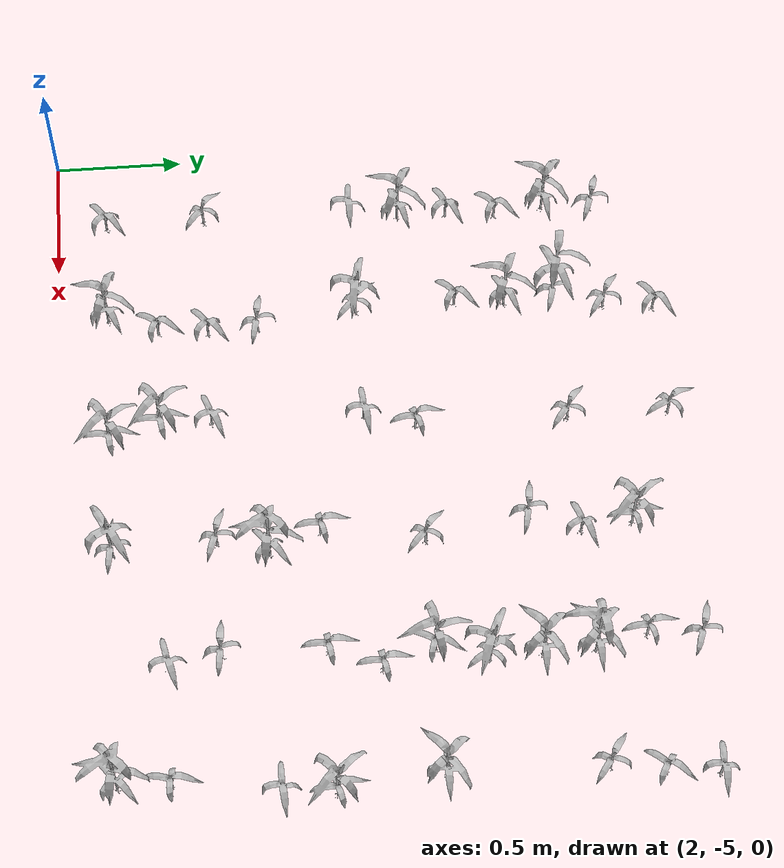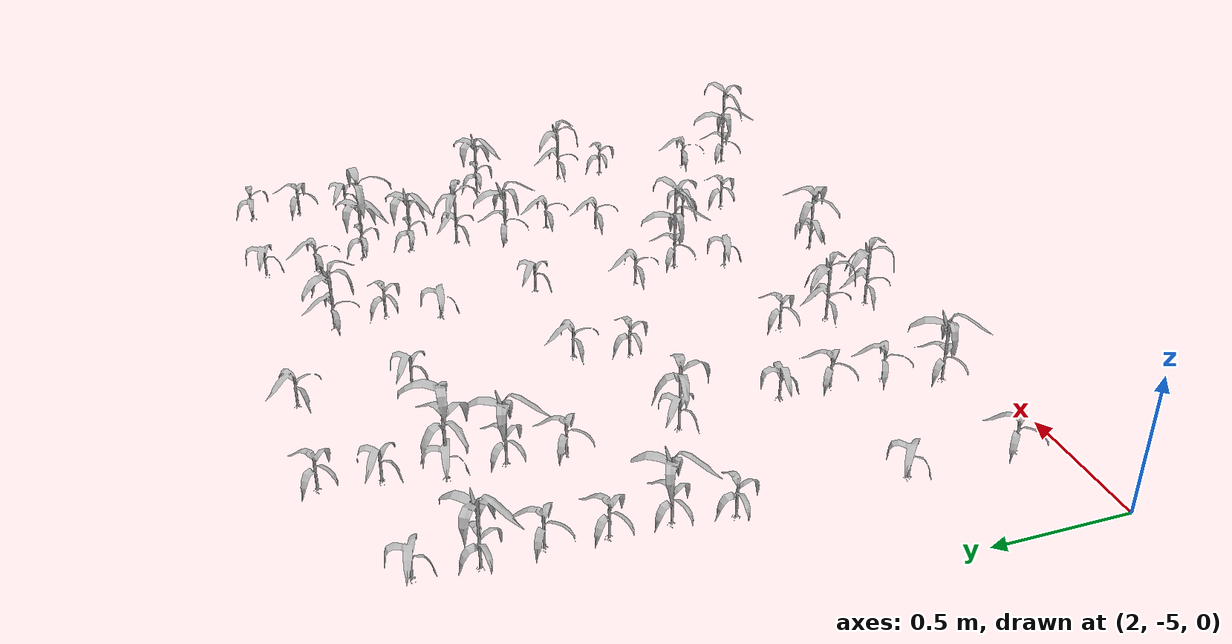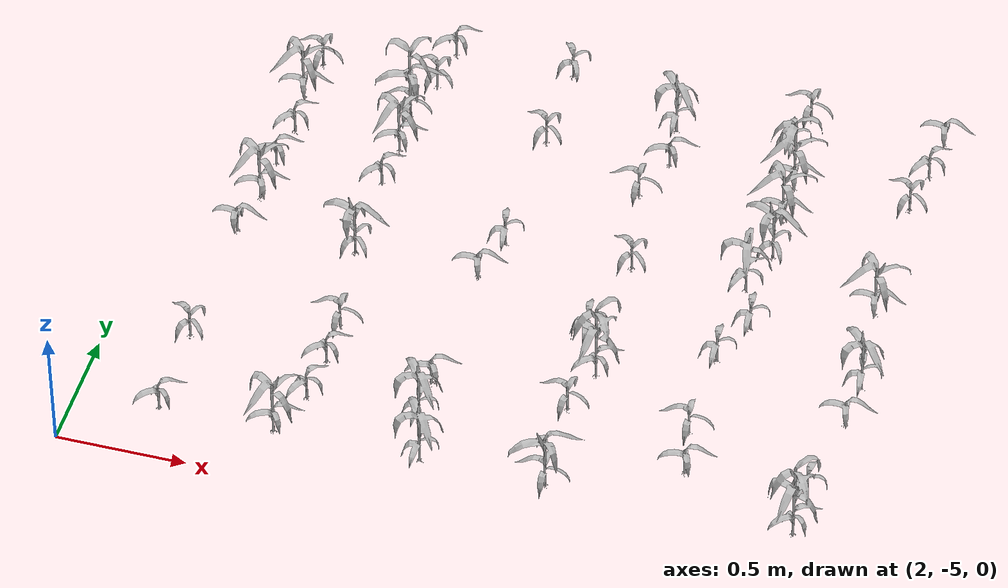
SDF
<sdf version="1.7">
 <world name="default">
  <model name="maize_2.3348726021539314_-4.8">
   <static>1</static>
   <link name="link">
    <inertial>
     <mass>0.2</mass>
     <inertia>
      <ixx>0.166667</ixx>
      <ixy>0</ixy>
      <ixz>0</ixz>
      <iyy>0.166667</iyy>
      <iyz>0</iyz>
      <izz>0.166667</izz>
     </inertia>
    </inertial>
    <collision name="collision">
     <geometry><mesh><uri>model://corn_3/meshes/corn.dae</uri><scale>0.25 0.25 0.25</scale></mesh></geometry>
     <surface>
      <friction><ode><mu>0</mu><mu2>0</mu2></ode></friction>
      <contact><ode><kp>0</kp><kd>0</kd><max_vel>0</max_vel><min_depth>0.002</min_depth></ode></contact>
     </surface>
    </collision>
    <visual name="visual">
     <geometry><mesh><uri>model://corn_3/meshes/corn.dae</uri><scale>0.25 0.25 0.25</scale></mesh></geometry>
    </visual>
    <velocity_decay><linear>0</linear><angular>0</angular></velocity_decay>
   </link>
   <pose>2.33487 -4.8 0.05 0 -0 0.77336</pose>
  </model>
  <model name="maize_2.32935553748009_-4.41">
   <static>1</static>
   <link name="link">
    <inertial>
     <mass>0.2</mass>
     <inertia>
      <ixx>0.166667</ixx>
      <ixy>0</ixy>
      <ixz>0</ixz>
      <iyy>0.166667</iyy>
      <iyz>0</iyz>
      <izz>0.166667</izz>
     </inertia>
    </inertial>
    <collision name="collision">
     <geometry><mesh><uri>model://corn_3/meshes/corn.dae</uri><scale>0.25 0.25 0.25</scale></mesh></geometry>
     <surface>
      <friction><ode><mu>0</mu><mu2>0</mu2></ode></friction>
      <contact><ode><kp>0</kp><kd>0</kd><max_vel>0</max_vel><min_depth>0.002</min_depth></ode></contact>
     </surface>
    </collision>
    <visual name="visual">
     <geometry><mesh><uri>model://corn_3/meshes/corn.dae</uri><scale>0.25 0.25 0.25</scale></mesh></geometry>
    </visual>
    <velocity_decay><linear>0</linear><angular>0</angular></velocity_decay>
   </link>
   <pose>2.32936 -4.41 0.05 0 -0 2.48781</pose>
  </model>
  <model name="maize_2.3270855033103324_-3.8249999999999997">
   <static>1</static>
   <link name="link">
    <inertial>
     <mass>0.2</mass>
     <inertia>
      <ixx>0.166667</ixx>
      <ixy>0</ixy>
      <ixz>0</ixz>
      <iyy>0.166667</iyy>
      <iyz>0</iyz>
      <izz>0.166667</izz>
     </inertia>
    </inertial>
    <collision name="collision">
     <geometry><mesh><uri>model://corn_3/meshes/corn.dae</uri><scale>0.25 0.25 0.25</scale></mesh></geometry>
     <surface>
      <friction><ode><mu>0</mu><mu2>0</mu2></ode></friction>
      <contact><ode><kp>0</kp><kd>0</kd><max_vel>0</max_vel><min_depth>0.002</min_depth></ode></contact>
     </surface>
    </collision>
    <visual name="visual">
     <geometry><mesh><uri>model://corn_3/meshes/corn.dae</uri><scale>0.25 0.25 0.25</scale></mesh></geometry>
    </visual>
    <velocity_decay><linear>0</linear><angular>0</angular></velocity_decay>
   </link>
   <pose>2.32709 -3.825 0.05 0 -0 0.055733</pose>
  </model>
  <model name="maize_2.358168222878978_-3.63">
   <static>1</static>
   <link name="link">
    <inertial>
     <mass>0.2</mass>
     <inertia>
      <ixx>0.166667</ixx>
      <ixy>0</ixy>
      <ixz>0</ixz>
      <iyy>0.166667</iyy>
      <iyz>0</iyz>
      <izz>0.166667</izz>
     </inertia>
    </inertial>
    <collision name="collision">
     <geometry><mesh><uri>model://corn_4/meshes/corn.dae</uri><scale>0.25 0.25 0.25</scale></mesh></geometry>
     <surface>
      <friction><ode><mu>0</mu><mu2>0</mu2></ode></friction>
      <contact><ode><kp>0</kp><kd>0</kd><max_vel>0</max_vel><min_depth>0.002</min_depth></ode></contact>
     </surface>
    </collision>
    <visual name="visual">
     <geometry><mesh><uri>model://corn_4/meshes/corn.dae</uri><scale>0.25 0.25 0.25</scale></mesh></geometry>
    </visual>
    <velocity_decay><linear>0</linear><angular>0</angular></velocity_decay>
   </link>
   <pose>2.35817 -3.63 0.05 0 -0 0.399852</pose>
  </model>
  <model name="maize_2.361056824080237_-3.4349999999999996">
   <static>1</static>
   <link name="link">
    <inertial>
     <mass>0.2</mass>
     <inertia>
      <ixx>0.166667</ixx>
      <ixy>0</ixy>
      <ixz>0</ixz>
      <iyy>0.166667</iyy>
      <iyz>0</iyz>
      <izz>0.166667</izz>
     </inertia>
    </inertial>
    <collision name="collision">
     <geometry><mesh><uri>model://corn_3/meshes/corn.dae</uri><scale>0.25 0.25 0.25</scale></mesh></geometry>
     <surface>
      <friction><ode><mu>0</mu><mu2>0</mu2></ode></friction>
      <contact><ode><kp>0</kp><kd>0</kd><max_vel>0</max_vel><min_depth>0.002</min_depth></ode></contact>
     </surface>
    </collision>
    <visual name="visual">
     <geometry><mesh><uri>model://corn_3/meshes/corn.dae</uri><scale>0.25 0.25 0.25</scale></mesh></geometry>
    </visual>
    <velocity_decay><linear>0</linear><angular>0</angular></velocity_decay>
   </link>
   <pose>2.36106 -3.435 0.05 0 -0 0.600972</pose>
  </model>
  <model name="maize_2.376322774345536_-3.2399999999999998">
   <static>1</static>
   <link name="link">
    <inertial>
     <mass>0.2</mass>
     <inertia>
      <ixx>0.166667</ixx>
      <ixy>0</ixy>
      <ixz>0</ixz>
      <iyy>0.166667</iyy>
      <iyz>0</iyz>
      <izz>0.166667</izz>
     </inertia>
    </inertial>
    <collision name="collision">
     <geometry><mesh><uri>model://corn_3/meshes/corn.dae</uri><scale>0.25 0.25 0.25</scale></mesh></geometry>
     <surface>
      <friction><ode><mu>0</mu><mu2>0</mu2></ode></friction>
      <contact><ode><kp>0</kp><kd>0</kd><max_vel>0</max_vel><min_depth>0.002</min_depth></ode></contact>
     </surface>
    </collision>
    <visual name="visual">
     <geometry><mesh><uri>model://corn_3/meshes/corn.dae</uri><scale>0.25 0.25 0.25</scale></mesh></geometry>
    </visual>
    <velocity_decay><linear>0</linear><angular>0</angular></velocity_decay>
   </link>
   <pose>2.37632 -3.24 0.05 0 -0 0.966387</pose>
  </model>
  <model name="maize_2.352077828334703_-3.045">
   <static>1</static>
   <link name="link">
    <inertial>
     <mass>0.2</mass>
     <inertia>
      <ixx>0.166667</ixx>
      <ixy>0</ixy>
      <ixz>0</ixz>
      <iyy>0.166667</iyy>
      <iyz>0</iyz>
      <izz>0.166667</izz>
     </inertia>
    </inertial>
    <collision name="collision">
     <geometry><mesh><uri>model://corn_4/meshes/corn.dae</uri><scale>0.25 0.25 0.25</scale></mesh></geometry>
     <surface>
      <friction><ode><mu>0</mu><mu2>0</mu2></ode></friction>
      <contact><ode><kp>0</kp><kd>0</kd><max_vel>0</max_vel><min_depth>0.002</min_depth></ode></contact>
     </surface>
    </collision>
    <visual name="visual">
     <geometry><mesh><uri>model://corn_4/meshes/corn.dae</uri><scale>0.25 0.25 0.25</scale></mesh></geometry>
    </visual>
    <velocity_decay><linear>0</linear><angular>0</angular></velocity_decay>
   </link>
   <pose>2.35208 -3.045 0.05 0 -0 0.21122</pose>
  </model>
  <model name="maize_2.371475689242387_-2.8499999999999996">
   <static>1</static>
   <link name="link">
    <inertial>
     <mass>0.2</mass>
     <inertia>
      <ixx>0.166667</ixx>
      <ixy>0</ixy>
      <ixz>0</ixz>
      <iyy>0.166667</iyy>
      <iyz>0</iyz>
      <izz>0.166667</izz>
     </inertia>
    </inertial>
    <collision name="collision">
     <geometry><mesh><uri>model://corn_3/meshes/corn.dae</uri><scale>0.25 0.25 0.25</scale></mesh></geometry>
     <surface>
      <friction><ode><mu>0</mu><mu2>0</mu2></ode></friction>
      <contact><ode><kp>0</kp><kd>0</kd><max_vel>0</max_vel><min_depth>0.002</min_depth></ode></contact>
     </surface>
    </collision>
    <visual name="visual">
     <geometry><mesh><uri>model://corn_3/meshes/corn.dae</uri><scale>0.25 0.25 0.25</scale></mesh></geometry>
    </visual>
    <velocity_decay><linear>0</linear><angular>0</angular></velocity_decay>
   </link>
   <pose>2.37148 -2.85 0.05 0 -0 2.8972</pose>
  </model>
  <model name="maize_2.773347793915831_-4.8">
   <static>1</static>
   <link name="link">
    <inertial>
     <mass>0.2</mass>
     <inertia>
      <ixx>0.166667</ixx>
      <ixy>0</ixy>
      <ixz>0</ixz>
      <iyy>0.166667</iyy>
      <iyz>0</iyz>
      <izz>0.166667</izz>
     </inertia>
    </inertial>
    <collision name="collision">
     <geometry><mesh><uri>model://corn_4/meshes/corn.dae</uri><scale>0.25 0.25 0.25</scale></mesh></geometry>
     <surface>
      <friction><ode><mu>0</mu><mu2>0</mu2></ode></friction>
      <contact><ode><kp>0</kp><kd>0</kd><max_vel>0</max_vel><min_depth>0.002</min_depth></ode></contact>
     </surface>
    </collision>
    <visual name="visual">
     <geometry><mesh><uri>model://corn_4/meshes/corn.dae</uri><scale>0.25 0.25 0.25</scale></mesh></geometry>
    </visual>
    <velocity_decay><linear>0</linear><angular>0</angular></velocity_decay>
   </link>
   <pose>2.77335 -4.8 0.05 0 -0 0.520923</pose>
  </model>
  <model name="maize_2.841405297836512_-4.6049999999999995">
   <static>1</static>
   <link name="link">
    <inertial>
     <mass>0.2</mass>
     <inertia>
      <ixx>0.166667</ixx>
      <ixy>0</ixy>
      <ixz>0</ixz>
      <iyy>0.166667</iyy>
      <iyz>0</iyz>
      <izz>0.166667</izz>
     </inertia>
    </inertial>
    <collision name="collision">
     <geometry><mesh><uri>model://corn_3/meshes/corn.dae</uri><scale>0.25 0.25 0.25</scale></mesh></geometry>
     <surface>
      <friction><ode><mu>0</mu><mu2>0</mu2></ode></friction>
      <contact><ode><kp>0</kp><kd>0</kd><max_vel>0</max_vel><min_depth>0.002</min_depth></ode></contact>
     </surface>
    </collision>
    <visual name="visual">
     <geometry><mesh><uri>model://corn_3/meshes/corn.dae</uri><scale>0.25 0.25 0.25</scale></mesh></geometry>
    </visual>
    <velocity_decay><linear>0</linear><angular>0</angular></velocity_decay>
   </link>
   <pose>2.8414 -4.605 0.05 0 -0 1.12475</pose>
  </model>
  <model name="maize_2.8576831964997442_-4.41">
   <static>1</static>
   <link name="link">
    <inertial>
     <mass>0.2</mass>
     <inertia>
      <ixx>0.166667</ixx>
      <ixy>0</ixy>
      <ixz>0</ixz>
      <iyy>0.166667</iyy>
      <iyz>0</iyz>
      <izz>0.166667</izz>
     </inertia>
    </inertial>
    <collision name="collision">
     <geometry><mesh><uri>model://corn_3/meshes/corn.dae</uri><scale>0.25 0.25 0.25</scale></mesh></geometry>
     <surface>
      <friction><ode><mu>0</mu><mu2>0</mu2></ode></friction>
      <contact><ode><kp>0</kp><kd>0</kd><max_vel>0</max_vel><min_depth>0.002</min_depth></ode></contact>
     </surface>
    </collision>
    <visual name="visual">
     <geometry><mesh><uri>model://corn_3/meshes/corn.dae</uri><scale>0.25 0.25 0.25</scale></mesh></geometry>
    </visual>
    <velocity_decay><linear>0</linear><angular>0</angular></velocity_decay>
   </link>
   <pose>2.85768 -4.41 0.05 0 -0 0.804742</pose>
  </model>
  <model name="maize_2.851846044762524_-4.215">
   <static>1</static>
   <link name="link">
    <inertial>
     <mass>0.2</mass>
     <inertia>
      <ixx>0.166667</ixx>
      <ixy>0</ixy>
      <ixz>0</ixz>
      <iyy>0.166667</iyy>
      <iyz>0</iyz>
      <izz>0.166667</izz>
     </inertia>
    </inertial>
    <collision name="collision">
     <geometry><mesh><uri>model://corn_3/meshes/corn.dae</uri><scale>0.25 0.25 0.25</scale></mesh></geometry>
     <surface>
      <friction><ode><mu>0</mu><mu2>0</mu2></ode></friction>
      <contact><ode><kp>0</kp><kd>0</kd><max_vel>0</max_vel><min_depth>0.002</min_depth></ode></contact>
     </surface>
    </collision>
    <visual name="visual">
     <geometry><mesh><uri>model://corn_3/meshes/corn.dae</uri><scale>0.25 0.25 0.25</scale></mesh></geometry>
    </visual>
    <velocity_decay><linear>0</linear><angular>0</angular></velocity_decay>
   </link>
   <pose>2.85185 -4.215 0.05 0 -0 3.03823</pose>
  </model>
  <model name="maize_2.794281756039835_-3.8249999999999997">
   <static>1</static>
   <link name="link">
    <inertial>
     <mass>0.2</mass>
     <inertia>
      <ixx>0.166667</ixx>
      <ixy>0</ixy>
      <ixz>0</ixz>
      <iyy>0.166667</iyy>
      <iyz>0</iyz>
      <izz>0.166667</izz>
     </inertia>
    </inertial>
    <collision name="collision">
     <geometry><mesh><uri>model://corn_4/meshes/corn.dae</uri><scale>0.25 0.25 0.25</scale></mesh></geometry>
     <surface>
      <friction><ode><mu>0</mu><mu2>0</mu2></ode></friction>
      <contact><ode><kp>0</kp><kd>0</kd><max_vel>0</max_vel><min_depth>0.002</min_depth></ode></contact>
     </surface>
    </collision>
    <visual name="visual">
     <geometry><mesh><uri>model://corn_4/meshes/corn.dae</uri><scale>0.25 0.25 0.25</scale></mesh></geometry>
    </visual>
    <velocity_decay><linear>0</linear><angular>0</angular></velocity_decay>
   </link>
   <pose>2.79428 -3.825 0.05 0 -0 2.40889</pose>
  </model>
  <model name="maize_2.782629847699163_-3.4349999999999996">
   <static>1</static>
   <link name="link">
    <inertial>
     <mass>0.2</mass>
     <inertia>
      <ixx>0.166667</ixx>
      <ixy>0</ixy>
      <ixz>0</ixz>
      <iyy>0.166667</iyy>
      <iyz>0</iyz>
      <izz>0.166667</izz>
     </inertia>
    </inertial>
    <collision name="collision">
     <geometry><mesh><uri>model://corn_3/meshes/corn.dae</uri><scale>0.25 0.25 0.25</scale></mesh></geometry>
     <surface>
      <friction><ode><mu>0</mu><mu2>0</mu2></ode></friction>
      <contact><ode><kp>0</kp><kd>0</kd><max_vel>0</max_vel><min_depth>0.002</min_depth></ode></contact>
     </surface>
    </collision>
    <visual name="visual">
     <geometry><mesh><uri>model://corn_3/meshes/corn.dae</uri><scale>0.25 0.25 0.25</scale></mesh></geometry>
    </visual>
    <velocity_decay><linear>0</linear><angular>0</angular></velocity_decay>
   </link>
   <pose>2.78263 -3.435 0.05 0 -0 0.936379</pose>
  </model>
  <model name="maize_2.7954930849546593_-3.2399999999999998">
   <static>1</static>
   <link name="link">
    <inertial>
     <mass>0.2</mass>
     <inertia>
      <ixx>0.166667</ixx>
      <ixy>0</ixy>
      <ixz>0</ixz>
      <iyy>0.166667</iyy>
      <iyz>0</iyz>
      <izz>0.166667</izz>
     </inertia>
    </inertial>
    <collision name="collision">
     <geometry><mesh><uri>model://corn_4/meshes/corn.dae</uri><scale>0.25 0.25 0.25</scale></mesh></geometry>
     <surface>
      <friction><ode><mu>0</mu><mu2>0</mu2></ode></friction>
      <contact><ode><kp>0</kp><kd>0</kd><max_vel>0</max_vel><min_depth>0.002</min_depth></ode></contact>
     </surface>
    </collision>
    <visual name="visual">
     <geometry><mesh><uri>model://corn_4/meshes/corn.dae</uri><scale>0.25 0.25 0.25</scale></mesh></geometry>
    </visual>
    <velocity_decay><linear>0</linear><angular>0</angular></velocity_decay>
   </link>
   <pose>2.79549 -3.24 0.05 0 -0 0.535918</pose>
  </model>
  <model name="maize_2.7836492452501513_-3.045">
   <static>1</static>
   <link name="link">
    <inertial>
     <mass>0.2</mass>
     <inertia>
      <ixx>0.166667</ixx>
      <ixy>0</ixy>
      <ixz>0</ixz>
      <iyy>0.166667</iyy>
      <iyz>0</iyz>
      <izz>0.166667</izz>
     </inertia>
    </inertial>
    <collision name="collision">
     <geometry><mesh><uri>model://corn_5/meshes/corn.dae</uri><scale>0.25 0.25 0.25</scale></mesh></geometry>
     <surface>
      <friction><ode><mu>0</mu><mu2>0</mu2></ode></friction>
      <contact><ode><kp>0</kp><kd>0</kd><max_vel>0</max_vel><min_depth>0.002</min_depth></ode></contact>
     </surface>
    </collision>
    <visual name="visual">
     <geometry><mesh><uri>model://corn_5/meshes/corn.dae</uri><scale>0.25 0.25 0.25</scale></mesh></geometry>
    </visual>
    <velocity_decay><linear>0</linear><angular>0</angular></velocity_decay>
   </link>
   <pose>2.78365 -3.045 0.05 0 -0 2.97519</pose>
  </model>
  <model name="maize_2.8356396558191705_-2.8499999999999996">
   <static>1</static>
   <link name="link">
    <inertial>
     <mass>0.2</mass>
     <inertia>
      <ixx>0.166667</ixx>
      <ixy>0</ixy>
      <ixz>0</ixz>
      <iyy>0.166667</iyy>
      <iyz>0</iyz>
      <izz>0.166667</izz>
     </inertia>
    </inertial>
    <collision name="collision">
     <geometry><mesh><uri>model://corn_3/meshes/corn.dae</uri><scale>0.25 0.25 0.25</scale></mesh></geometry>
     <surface>
      <friction><ode><mu>0</mu><mu2>0</mu2></ode></friction>
      <contact><ode><kp>0</kp><kd>0</kd><max_vel>0</max_vel><min_depth>0.002</min_depth></ode></contact>
     </surface>
    </collision>
    <visual name="visual">
     <geometry><mesh><uri>model://corn_3/meshes/corn.dae</uri><scale>0.25 0.25 0.25</scale></mesh></geometry>
    </visual>
    <velocity_decay><linear>0</linear><angular>0</angular></velocity_decay>
   </link>
   <pose>2.83564 -2.85 0.05 0 -0 2.60805</pose>
  </model>
  <model name="maize_2.8576109082005523_-2.655">
   <static>1</static>
   <link name="link">
    <inertial>
     <mass>0.2</mass>
     <inertia>
      <ixx>0.166667</ixx>
      <ixy>0</ixy>
      <ixz>0</ixz>
      <iyy>0.166667</iyy>
      <iyz>0</iyz>
      <izz>0.166667</izz>
     </inertia>
    </inertial>
    <collision name="collision">
     <geometry><mesh><uri>model://corn_3/meshes/corn.dae</uri><scale>0.25 0.25 0.25</scale></mesh></geometry>
     <surface>
      <friction><ode><mu>0</mu><mu2>0</mu2></ode></friction>
      <contact><ode><kp>0</kp><kd>0</kd><max_vel>0</max_vel><min_depth>0.002</min_depth></ode></contact>
     </surface>
    </collision>
    <visual name="visual">
     <geometry><mesh><uri>model://corn_3/meshes/corn.dae</uri><scale>0.25 0.25 0.25</scale></mesh></geometry>
    </visual>
    <velocity_decay><linear>0</linear><angular>0</angular></velocity_decay>
   </link>
   <pose>2.85761 -2.655 0.05 0 -0 0.721303</pose>
  </model>
  <model name="maize_3.3289617006802126_-4.8">
   <static>1</static>
   <link name="link">
    <inertial>
     <mass>0.2</mass>
     <inertia>
      <ixx>0.166667</ixx>
      <ixy>0</ixy>
      <ixz>0</ixz>
      <iyy>0.166667</iyy>
      <iyz>0</iyz>
      <izz>0.166667</izz>
     </inertia>
    </inertial>
    <collision name="collision">
     <geometry><mesh><uri>model://corn_4/meshes/corn.dae</uri><scale>0.25 0.25 0.25</scale></mesh></geometry>
     <surface>
      <friction><ode><mu>0</mu><mu2>0</mu2></ode></friction>
      <contact><ode><kp>0</kp><kd>0</kd><max_vel>0</max_vel><min_depth>0.002</min_depth></ode></contact>
     </surface>
    </collision>
    <visual name="visual">
     <geometry><mesh><uri>model://corn_4/meshes/corn.dae</uri><scale>0.25 0.25 0.25</scale></mesh></geometry>
    </visual>
    <velocity_decay><linear>0</linear><angular>0</angular></velocity_decay>
   </link>
   <pose>3.32896 -4.8 0.05 0 -0 1.59769</pose>
  </model>
  <model name="maize_3.2705729440974_-4.6049999999999995">
   <static>1</static>
   <link name="link">
    <inertial>
     <mass>0.2</mass>
     <inertia>
      <ixx>0.166667</ixx>
      <ixy>0</ixy>
      <ixz>0</ixz>
      <iyy>0.166667</iyy>
      <iyz>0</iyz>
      <izz>0.166667</izz>
     </inertia>
    </inertial>
    <collision name="collision">
     <geometry><mesh><uri>model://corn_4/meshes/corn.dae</uri><scale>0.25 0.25 0.25</scale></mesh></geometry>
     <surface>
      <friction><ode><mu>0</mu><mu2>0</mu2></ode></friction>
      <contact><ode><kp>0</kp><kd>0</kd><max_vel>0</max_vel><min_depth>0.002</min_depth></ode></contact>
     </surface>
    </collision>
    <visual name="visual">
     <geometry><mesh><uri>model://corn_4/meshes/corn.dae</uri><scale>0.25 0.25 0.25</scale></mesh></geometry>
    </visual>
    <velocity_decay><linear>0</linear><angular>0</angular></velocity_decay>
   </link>
   <pose>3.27057 -4.605 0.05 0 -0 1.6539</pose>
  </model>
  <model name="maize_3.2606273536769197_-4.41">
   <static>1</static>
   <link name="link">
    <inertial>
     <mass>0.2</mass>
     <inertia>
      <ixx>0.166667</ixx>
      <ixy>0</ixy>
      <ixz>0</ixz>
      <iyy>0.166667</iyy>
      <iyz>0</iyz>
      <izz>0.166667</izz>
     </inertia>
    </inertial>
    <collision name="collision">
     <geometry><mesh><uri>model://corn_3/meshes/corn.dae</uri><scale>0.25 0.25 0.25</scale></mesh></geometry>
     <surface>
      <friction><ode><mu>0</mu><mu2>0</mu2></ode></friction>
      <contact><ode><kp>0</kp><kd>0</kd><max_vel>0</max_vel><min_depth>0.002</min_depth></ode></contact>
     </surface>
    </collision>
    <visual name="visual">
     <geometry><mesh><uri>model://corn_3/meshes/corn.dae</uri><scale>0.25 0.25 0.25</scale></mesh></geometry>
    </visual>
    <velocity_decay><linear>0</linear><angular>0</angular></velocity_decay>
   </link>
   <pose>3.26063 -4.41 0.05 0 -0 0.451988</pose>
  </model>
  <model name="maize_3.2734267057398205_-3.8249999999999997">
   <static>1</static>
   <link name="link">
    <inertial>
     <mass>0.2</mass>
     <inertia>
      <ixx>0.166667</ixx>
      <ixy>0</ixy>
      <ixz>0</ixz>
      <iyy>0.166667</iyy>
      <iyz>0</iyz>
      <izz>0.166667</izz>
     </inertia>
    </inertial>
    <collision name="collision">
     <geometry><mesh><uri>model://corn_3/meshes/corn.dae</uri><scale>0.25 0.25 0.25</scale></mesh></geometry>
     <surface>
      <friction><ode><mu>0</mu><mu2>0</mu2></ode></friction>
      <contact><ode><kp>0</kp><kd>0</kd><max_vel>0</max_vel><min_depth>0.002</min_depth></ode></contact>
     </surface>
    </collision>
    <visual name="visual">
     <geometry><mesh><uri>model://corn_3/meshes/corn.dae</uri><scale>0.25 0.25 0.25</scale></mesh></geometry>
    </visual>
    <velocity_decay><linear>0</linear><angular>0</angular></velocity_decay>
   </link>
   <pose>3.27343 -3.825 0.05 0 -0 0.182039</pose>
  </model>
  <model name="maize_3.3268675368032263_-3.63">
   <static>1</static>
   <link name="link">
    <inertial>
     <mass>0.2</mass>
     <inertia>
      <ixx>0.166667</ixx>
      <ixy>0</ixy>
      <ixz>0</ixz>
      <iyy>0.166667</iyy>
      <iyz>0</iyz>
      <izz>0.166667</izz>
     </inertia>
    </inertial>
    <collision name="collision">
     <geometry><mesh><uri>model://corn_3/meshes/corn.dae</uri><scale>0.25 0.25 0.25</scale></mesh></geometry>
     <surface>
      <friction><ode><mu>0</mu><mu2>0</mu2></ode></friction>
      <contact><ode><kp>0</kp><kd>0</kd><max_vel>0</max_vel><min_depth>0.002</min_depth></ode></contact>
     </surface>
    </collision>
    <visual name="visual">
     <geometry><mesh><uri>model://corn_3/meshes/corn.dae</uri><scale>0.25 0.25 0.25</scale></mesh></geometry>
    </visual>
    <velocity_decay><linear>0</linear><angular>0</angular></velocity_decay>
   </link>
   <pose>3.32687 -3.63 0.05 0 -0 1.79358</pose>
  </model>
  <model name="maize_3.3290484209105062_-3.045">
   <static>1</static>
   <link name="link">
    <inertial>
     <mass>0.2</mass>
     <inertia>
      <ixx>0.166667</ixx>
      <ixy>0</ixy>
      <ixz>0</ixz>
      <iyy>0.166667</iyy>
      <iyz>0</iyz>
      <izz>0.166667</izz>
     </inertia>
    </inertial>
    <collision name="collision">
     <geometry><mesh><uri>model://corn_3/meshes/corn.dae</uri><scale>0.25 0.25 0.25</scale></mesh></geometry>
     <surface>
      <friction><ode><mu>0</mu><mu2>0</mu2></ode></friction>
      <contact><ode><kp>0</kp><kd>0</kd><max_vel>0</max_vel><min_depth>0.002</min_depth></ode></contact>
     </surface>
    </collision>
    <visual name="visual">
     <geometry><mesh><uri>model://corn_3/meshes/corn.dae</uri><scale>0.25 0.25 0.25</scale></mesh></geometry>
    </visual>
    <velocity_decay><linear>0</linear><angular>0</angular></velocity_decay>
   </link>
   <pose>3.32905 -3.045 0.05 0 -0 2.55014</pose>
  </model>
  <model name="maize_3.330238680097593_-2.655">
   <static>1</static>
   <link name="link">
    <inertial>
     <mass>0.2</mass>
     <inertia>
      <ixx>0.166667</ixx>
      <ixy>0</ixy>
      <ixz>0</ixz>
      <iyy>0.166667</iyy>
      <iyz>0</iyz>
      <izz>0.166667</izz>
     </inertia>
    </inertial>
    <collision name="collision">
     <geometry><mesh><uri>model://corn_3/meshes/corn.dae</uri><scale>0.25 0.25 0.25</scale></mesh></geometry>
     <surface>
      <friction><ode><mu>0</mu><mu2>0</mu2></ode></friction>
      <contact><ode><kp>0</kp><kd>0</kd><max_vel>0</max_vel><min_depth>0.002</min_depth></ode></contact>
     </surface>
    </collision>
    <visual name="visual">
     <geometry><mesh><uri>model://corn_3/meshes/corn.dae</uri><scale>0.25 0.25 0.25</scale></mesh></geometry>
    </visual>
    <velocity_decay><linear>0</linear><angular>0</angular></velocity_decay>
   </link>
   <pose>3.33024 -2.655 0.05 0 -0 2.10272</pose>
  </model>
  <model name="maize_3.800036141704056_-4.8">
   <static>1</static>
   <link name="link">
    <inertial>
     <mass>0.2</mass>
     <inertia>
      <ixx>0.166667</ixx>
      <ixy>0</ixy>
      <ixz>0</ixz>
      <iyy>0.166667</iyy>
      <iyz>0</iyz>
      <izz>0.166667</izz>
     </inertia>
    </inertial>
    <collision name="collision">
     <geometry><mesh><uri>model://corn_4/meshes/corn.dae</uri><scale>0.25 0.25 0.25</scale></mesh></geometry>
     <surface>
      <friction><ode><mu>0</mu><mu2>0</mu2></ode></friction>
      <contact><ode><kp>0</kp><kd>0</kd><max_vel>0</max_vel><min_depth>0.002</min_depth></ode></contact>
     </surface>
    </collision>
    <visual name="visual">
     <geometry><mesh><uri>model://corn_4/meshes/corn.dae</uri><scale>0.25 0.25 0.25</scale></mesh></geometry>
    </visual>
    <velocity_decay><linear>0</linear><angular>0</angular></velocity_decay>
   </link>
   <pose>3.80004 -4.8 0.05 0 -0 3.10667</pose>
  </model>
  <model name="maize_3.7795476964603525_-4.41">
   <static>1</static>
   <link name="link">
    <inertial>
     <mass>0.2</mass>
     <inertia>
      <ixx>0.166667</ixx>
      <ixy>0</ixy>
      <ixz>0</ixz>
      <iyy>0.166667</iyy>
      <iyz>0</iyz>
      <izz>0.166667</izz>
     </inertia>
    </inertial>
    <collision name="collision">
     <geometry><mesh><uri>model://corn_3/meshes/corn.dae</uri><scale>0.25 0.25 0.25</scale></mesh></geometry>
     <surface>
      <friction><ode><mu>0</mu><mu2>0</mu2></ode></friction>
      <contact><ode><kp>0</kp><kd>0</kd><max_vel>0</max_vel><min_depth>0.002</min_depth></ode></contact>
     </surface>
    </collision>
    <visual name="visual">
     <geometry><mesh><uri>model://corn_3/meshes/corn.dae</uri><scale>0.25 0.25 0.25</scale></mesh></geometry>
    </visual>
    <velocity_decay><linear>0</linear><angular>0</angular></velocity_decay>
   </link>
   <pose>3.77955 -4.41 0.05 0 -0 2.89423</pose>
  </model>
  <model name="maize_3.835616775339162_-4.215">
   <static>1</static>
   <link name="link">
    <inertial>
     <mass>0.2</mass>
     <inertia>
      <ixx>0.166667</ixx>
      <ixy>0</ixy>
      <ixz>0</ixz>
      <iyy>0.166667</iyy>
      <iyz>0</iyz>
      <izz>0.166667</izz>
     </inertia>
    </inertial>
    <collision name="collision">
     <geometry><mesh><uri>model://corn_5/meshes/corn.dae</uri><scale>0.25 0.25 0.25</scale></mesh></geometry>
     <surface>
      <friction><ode><mu>0</mu><mu2>0</mu2></ode></friction>
      <contact><ode><kp>0</kp><kd>0</kd><max_vel>0</max_vel><min_depth>0.002</min_depth></ode></contact>
     </surface>
    </collision>
    <visual name="visual">
     <geometry><mesh><uri>model://corn_5/meshes/corn.dae</uri><scale>0.25 0.25 0.25</scale></mesh></geometry>
    </visual>
    <velocity_decay><linear>0</linear><angular>0</angular></velocity_decay>
   </link>
   <pose>3.83562 -4.215 0.05 0 -0 0.770651</pose>
  </model>
  <model name="maize_3.7555636575923375_-4.02">
   <static>1</static>
   <link name="link">
    <inertial>
     <mass>0.2</mass>
     <inertia>
      <ixx>0.166667</ixx>
      <ixy>0</ixy>
      <ixz>0</ixz>
      <iyy>0.166667</iyy>
      <iyz>0</iyz>
      <izz>0.166667</izz>
     </inertia>
    </inertial>
    <collision name="collision">
     <geometry><mesh><uri>model://corn_3/meshes/corn.dae</uri><scale>0.25 0.25 0.25</scale></mesh></geometry>
     <surface>
      <friction><ode><mu>0</mu><mu2>0</mu2></ode></friction>
      <contact><ode><kp>0</kp><kd>0</kd><max_vel>0</max_vel><min_depth>0.002</min_depth></ode></contact>
     </surface>
    </collision>
    <visual name="visual">
     <geometry><mesh><uri>model://corn_3/meshes/corn.dae</uri><scale>0.25 0.25 0.25</scale></mesh></geometry>
    </visual>
    <velocity_decay><linear>0</linear><angular>0</angular></velocity_decay>
   </link>
   <pose>3.75556 -4.02 0.05 0 -0 1.73052</pose>
  </model>
  <model name="maize_3.8197064592310763_-3.63">
   <static>1</static>
   <link name="link">
    <inertial>
     <mass>0.2</mass>
     <inertia>
      <ixx>0.166667</ixx>
      <ixy>0</ixy>
      <ixz>0</ixz>
      <iyy>0.166667</iyy>
      <iyz>0</iyz>
      <izz>0.166667</izz>
     </inertia>
    </inertial>
    <collision name="collision">
     <geometry><mesh><uri>model://corn_3/meshes/corn.dae</uri><scale>0.25 0.25 0.25</scale></mesh></geometry>
     <surface>
      <friction><ode><mu>0</mu><mu2>0</mu2></ode></friction>
      <contact><ode><kp>0</kp><kd>0</kd><max_vel>0</max_vel><min_depth>0.002</min_depth></ode></contact>
     </surface>
    </collision>
    <visual name="visual">
     <geometry><mesh><uri>model://corn_3/meshes/corn.dae</uri><scale>0.25 0.25 0.25</scale></mesh></geometry>
    </visual>
    <velocity_decay><linear>0</linear><angular>0</angular></velocity_decay>
   </link>
   <pose>3.81971 -3.63 0.05 0 -0 2.47128</pose>
  </model>
  <model name="maize_3.7459138734948727_-3.2399999999999998">
   <static>1</static>
   <link name="link">
    <inertial>
     <mass>0.2</mass>
     <inertia>
      <ixx>0.166667</ixx>
      <ixy>0</ixy>
      <ixz>0</ixz>
      <iyy>0.166667</iyy>
      <iyz>0</iyz>
      <izz>0.166667</izz>
     </inertia>
    </inertial>
    <collision name="collision">
     <geometry><mesh><uri>model://corn_3/meshes/corn.dae</uri><scale>0.25 0.25 0.25</scale></mesh></geometry>
     <surface>
      <friction><ode><mu>0</mu><mu2>0</mu2></ode></friction>
      <contact><ode><kp>0</kp><kd>0</kd><max_vel>0</max_vel><min_depth>0.002</min_depth></ode></contact>
     </surface>
    </collision>
    <visual name="visual">
     <geometry><mesh><uri>model://corn_3/meshes/corn.dae</uri><scale>0.25 0.25 0.25</scale></mesh></geometry>
    </visual>
    <velocity_decay><linear>0</linear><angular>0</angular></velocity_decay>
   </link>
   <pose>3.74591 -3.24 0.05 0 -0 3.04351</pose>
  </model>
  <model name="maize_3.8178653938631077_-3.045">
   <static>1</static>
   <link name="link">
    <inertial>
     <mass>0.2</mass>
     <inertia>
      <ixx>0.166667</ixx>
      <ixy>0</ixy>
      <ixz>0</ixz>
      <iyy>0.166667</iyy>
      <iyz>0</iyz>
      <izz>0.166667</izz>
     </inertia>
    </inertial>
    <collision name="collision">
     <geometry><mesh><uri>model://corn_3/meshes/corn.dae</uri><scale>0.25 0.25 0.25</scale></mesh></geometry>
     <surface>
      <friction><ode><mu>0</mu><mu2>0</mu2></ode></friction>
      <contact><ode><kp>0</kp><kd>0</kd><max_vel>0</max_vel><min_depth>0.002</min_depth></ode></contact>
     </surface>
    </collision>
    <visual name="visual">
     <geometry><mesh><uri>model://corn_3/meshes/corn.dae</uri><scale>0.25 0.25 0.25</scale></mesh></geometry>
    </visual>
    <velocity_decay><linear>0</linear><angular>0</angular></velocity_decay>
   </link>
   <pose>3.81786 -3.045 0.05 0 -0 0.452439</pose>
  </model>
  <model name="maize_3.7952538650773673_-2.8499999999999996">
   <static>1</static>
   <link name="link">
    <inertial>
     <mass>0.2</mass>
     <inertia>
      <ixx>0.166667</ixx>
      <ixy>0</ixy>
      <ixz>0</ixz>
      <iyy>0.166667</iyy>
      <iyz>0</iyz>
      <izz>0.166667</izz>
     </inertia>
    </inertial>
    <collision name="collision">
     <geometry><mesh><uri>model://corn_4/meshes/corn.dae</uri><scale>0.25 0.25 0.25</scale></mesh></geometry>
     <surface>
      <friction><ode><mu>0</mu><mu2>0</mu2></ode></friction>
      <contact><ode><kp>0</kp><kd>0</kd><max_vel>0</max_vel><min_depth>0.002</min_depth></ode></contact>
     </surface>
    </collision>
    <visual name="visual">
     <geometry><mesh><uri>model://corn_4/meshes/corn.dae</uri><scale>0.25 0.25 0.25</scale></mesh></geometry>
    </visual>
    <velocity_decay><linear>0</linear><angular>0</angular></velocity_decay>
   </link>
   <pose>3.79525 -2.85 0.05 0 -0 1.70102</pose>
  </model>
  <model name="maize_4.272079562409768_-4.6049999999999995">
   <static>1</static>
   <link name="link">
    <inertial>
     <mass>0.2</mass>
     <inertia>
      <ixx>0.166667</ixx>
      <ixy>0</ixy>
      <ixz>0</ixz>
      <iyy>0.166667</iyy>
      <iyz>0</iyz>
      <izz>0.166667</izz>
     </inertia>
    </inertial>
    <collision name="collision">
     <geometry><mesh><uri>model://corn_3/meshes/corn.dae</uri><scale>0.25 0.25 0.25</scale></mesh></geometry>
     <surface>
      <friction><ode><mu>0</mu><mu2>0</mu2></ode></friction>
      <contact><ode><kp>0</kp><kd>0</kd><max_vel>0</max_vel><min_depth>0.002</min_depth></ode></contact>
     </surface>
    </collision>
    <visual name="visual">
     <geometry><mesh><uri>model://corn_3/meshes/corn.dae</uri><scale>0.25 0.25 0.25</scale></mesh></geometry>
    </visual>
    <velocity_decay><linear>0</linear><angular>0</angular></velocity_decay>
   </link>
   <pose>4.27208 -4.605 0.05 0 -0 0.309111</pose>
  </model>
  <model name="maize_4.237480307913873_-4.41">
   <static>1</static>
   <link name="link">
    <inertial>
     <mass>0.2</mass>
     <inertia>
      <ixx>0.166667</ixx>
      <ixy>0</ixy>
      <ixz>0</ixz>
      <iyy>0.166667</iyy>
      <iyz>0</iyz>
      <izz>0.166667</izz>
     </inertia>
    </inertial>
    <collision name="collision">
     <geometry><mesh><uri>model://corn_3/meshes/corn.dae</uri><scale>0.25 0.25 0.25</scale></mesh></geometry>
     <surface>
      <friction><ode><mu>0</mu><mu2>0</mu2></ode></friction>
      <contact><ode><kp>0</kp><kd>0</kd><max_vel>0</max_vel><min_depth>0.002</min_depth></ode></contact>
     </surface>
    </collision>
    <visual name="visual">
     <geometry><mesh><uri>model://corn_3/meshes/corn.dae</uri><scale>0.25 0.25 0.25</scale></mesh></geometry>
    </visual>
    <velocity_decay><linear>0</linear><angular>0</angular></velocity_decay>
   </link>
   <pose>4.23748 -4.41 0.05 0 -0 3.12466</pose>
  </model>
  <model name="maize_4.246939269314086_-4.02">
   <static>1</static>
   <link name="link">
    <inertial>
     <mass>0.2</mass>
     <inertia>
      <ixx>0.166667</ixx>
      <ixy>0</ixy>
      <ixz>0</ixz>
      <iyy>0.166667</iyy>
      <iyz>0</iyz>
      <izz>0.166667</izz>
     </inertia>
    </inertial>
    <collision name="collision">
     <geometry><mesh><uri>model://corn_3/meshes/corn.dae</uri><scale>0.25 0.25 0.25</scale></mesh></geometry>
     <surface>
      <friction><ode><mu>0</mu><mu2>0</mu2></ode></friction>
      <contact><ode><kp>0</kp><kd>0</kd><max_vel>0</max_vel><min_depth>0.002</min_depth></ode></contact>
     </surface>
    </collision>
    <visual name="visual">
     <geometry><mesh><uri>model://corn_3/meshes/corn.dae</uri><scale>0.25 0.25 0.25</scale></mesh></geometry>
    </visual>
    <velocity_decay><linear>0</linear><angular>0</angular></velocity_decay>
   </link>
   <pose>4.24694 -4.02 0.05 0 -0 1.65857</pose>
  </model>
  <model name="maize_4.326530658353731_-3.8249999999999997">
   <static>1</static>
   <link name="link">
    <inertial>
     <mass>0.2</mass>
     <inertia>
      <ixx>0.166667</ixx>
      <ixy>0</ixy>
      <ixz>0</ixz>
      <iyy>0.166667</iyy>
      <iyz>0</iyz>
      <izz>0.166667</izz>
     </inertia>
    </inertial>
    <collision name="collision">
     <geometry><mesh><uri>model://corn_3/meshes/corn.dae</uri><scale>0.25 0.25 0.25</scale></mesh></geometry>
     <surface>
      <friction><ode><mu>0</mu><mu2>0</mu2></ode></friction>
      <contact><ode><kp>0</kp><kd>0</kd><max_vel>0</max_vel><min_depth>0.002</min_depth></ode></contact>
     </surface>
    </collision>
    <visual name="visual">
     <geometry><mesh><uri>model://corn_3/meshes/corn.dae</uri><scale>0.25 0.25 0.25</scale></mesh></geometry>
    </visual>
    <velocity_decay><linear>0</linear><angular>0</angular></velocity_decay>
   </link>
   <pose>4.32653 -3.825 0.05 0 -0 1.69424</pose>
  </model>
  <model name="maize_4.261267898863323_-3.63">
   <static>1</static>
   <link name="link">
    <inertial>
     <mass>0.2</mass>
     <inertia>
      <ixx>0.166667</ixx>
      <ixy>0</ixy>
      <ixz>0</ixz>
      <iyy>0.166667</iyy>
      <iyz>0</iyz>
      <izz>0.166667</izz>
     </inertia>
    </inertial>
    <collision name="collision">
     <geometry><mesh><uri>model://corn_4/meshes/corn.dae</uri><scale>0.25 0.25 0.25</scale></mesh></geometry>
     <surface>
      <friction><ode><mu>0</mu><mu2>0</mu2></ode></friction>
      <contact><ode><kp>0</kp><kd>0</kd><max_vel>0</max_vel><min_depth>0.002</min_depth></ode></contact>
     </surface>
    </collision>
    <visual name="visual">
     <geometry><mesh><uri>model://corn_4/meshes/corn.dae</uri><scale>0.25 0.25 0.25</scale></mesh></geometry>
    </visual>
    <velocity_decay><linear>0</linear><angular>0</angular></velocity_decay>
   </link>
   <pose>4.26127 -3.63 0.05 0 -0 1.1883</pose>
  </model>
  <model name="maize_4.3184246271443945_-3.4349999999999996">
   <static>1</static>
   <link name="link">
    <inertial>
     <mass>0.2</mass>
     <inertia>
      <ixx>0.166667</ixx>
      <ixy>0</ixy>
      <ixz>0</ixz>
      <iyy>0.166667</iyy>
      <iyz>0</iyz>
      <izz>0.166667</izz>
     </inertia>
    </inertial>
    <collision name="collision">
     <geometry><mesh><uri>model://corn_4/meshes/corn.dae</uri><scale>0.25 0.25 0.25</scale></mesh></geometry>
     <surface>
      <friction><ode><mu>0</mu><mu2>0</mu2></ode></friction>
      <contact><ode><kp>0</kp><kd>0</kd><max_vel>0</max_vel><min_depth>0.002</min_depth></ode></contact>
     </surface>
    </collision>
    <visual name="visual">
     <geometry><mesh><uri>model://corn_4/meshes/corn.dae</uri><scale>0.25 0.25 0.25</scale></mesh></geometry>
    </visual>
    <velocity_decay><linear>0</linear><angular>0</angular></velocity_decay>
   </link>
   <pose>4.31843 -3.435 0.05 0 -0 2.20648</pose>
  </model>
  <model name="maize_4.3078124532513495_-3.2399999999999998">
   <static>1</static>
   <link name="link">
    <inertial>
     <mass>0.2</mass>
     <inertia>
      <ixx>0.166667</ixx>
      <ixy>0</ixy>
      <ixz>0</ixz>
      <iyy>0.166667</iyy>
      <iyz>0</iyz>
      <izz>0.166667</izz>
     </inertia>
    </inertial>
    <collision name="collision">
     <geometry><mesh><uri>model://corn_4/meshes/corn.dae</uri><scale>0.25 0.25 0.25</scale></mesh></geometry>
     <surface>
      <friction><ode><mu>0</mu><mu2>0</mu2></ode></friction>
      <contact><ode><kp>0</kp><kd>0</kd><max_vel>0</max_vel><min_depth>0.002</min_depth></ode></contact>
     </surface>
    </collision>
    <visual name="visual">
     <geometry><mesh><uri>model://corn_4/meshes/corn.dae</uri><scale>0.25 0.25 0.25</scale></mesh></geometry>
    </visual>
    <velocity_decay><linear>0</linear><angular>0</angular></velocity_decay>
   </link>
   <pose>4.30781 -3.24 0.05 0 -0 0.035114</pose>
  </model>
  <model name="maize_4.306123779196462_-3.045">
   <static>1</static>
   <link name="link">
    <inertial>
     <mass>0.2</mass>
     <inertia>
      <ixx>0.166667</ixx>
      <ixy>0</ixy>
      <ixz>0</ixz>
      <iyy>0.166667</iyy>
      <iyz>0</iyz>
      <izz>0.166667</izz>
     </inertia>
    </inertial>
    <collision name="collision">
     <geometry><mesh><uri>model://corn_5/meshes/corn.dae</uri><scale>0.25 0.25 0.25</scale></mesh></geometry>
     <surface>
      <friction><ode><mu>0</mu><mu2>0</mu2></ode></friction>
      <contact><ode><kp>0</kp><kd>0</kd><max_vel>0</max_vel><min_depth>0.002</min_depth></ode></contact>
     </surface>
    </collision>
    <visual name="visual">
     <geometry><mesh><uri>model://corn_5/meshes/corn.dae</uri><scale>0.25 0.25 0.25</scale></mesh></geometry>
    </visual>
    <velocity_decay><linear>0</linear><angular>0</angular></velocity_decay>
   </link>
   <pose>4.30612 -3.045 0.05 0 -0 0.125417</pose>
  </model>
  <model name="maize_4.254406608461903_-2.8499999999999996">
   <static>1</static>
   <link name="link">
    <inertial>
     <mass>0.2</mass>
     <inertia>
      <ixx>0.166667</ixx>
      <ixy>0</ixy>
      <ixz>0</ixz>
      <iyy>0.166667</iyy>
      <iyz>0</iyz>
      <izz>0.166667</izz>
     </inertia>
    </inertial>
    <collision name="collision">
     <geometry><mesh><uri>model://corn_3/meshes/corn.dae</uri><scale>0.25 0.25 0.25</scale></mesh></geometry>
     <surface>
      <friction><ode><mu>0</mu><mu2>0</mu2></ode></friction>
      <contact><ode><kp>0</kp><kd>0</kd><max_vel>0</max_vel><min_depth>0.002</min_depth></ode></contact>
     </surface>
    </collision>
    <visual name="visual">
     <geometry><mesh><uri>model://corn_3/meshes/corn.dae</uri><scale>0.25 0.25 0.25</scale></mesh></geometry>
    </visual>
    <velocity_decay><linear>0</linear><angular>0</angular></velocity_decay>
   </link>
   <pose>4.25441 -2.85 0.05 0 -0 1.76702</pose>
  </model>
  <model name="maize_4.282901350004734_-2.655">
   <static>1</static>
   <link name="link">
    <inertial>
     <mass>0.2</mass>
     <inertia>
      <ixx>0.166667</ixx>
      <ixy>0</ixy>
      <ixz>0</ixz>
      <iyy>0.166667</iyy>
      <iyz>0</iyz>
      <izz>0.166667</izz>
     </inertia>
    </inertial>
    <collision name="collision">
     <geometry><mesh><uri>model://corn_3/meshes/corn.dae</uri><scale>0.25 0.25 0.25</scale></mesh></geometry>
     <surface>
      <friction><ode><mu>0</mu><mu2>0</mu2></ode></friction>
      <contact><ode><kp>0</kp><kd>0</kd><max_vel>0</max_vel><min_depth>0.002</min_depth></ode></contact>
     </surface>
    </collision>
    <visual name="visual">
     <geometry><mesh><uri>model://corn_3/meshes/corn.dae</uri><scale>0.25 0.25 0.25</scale></mesh></geometry>
    </visual>
    <velocity_decay><linear>0</linear><angular>0</angular></velocity_decay>
   </link>
   <pose>4.2829 -2.655 0.05 0 -0 2.90338</pose>
  </model>
  <model name="maize_4.720491190564514_-4.8">
   <static>1</static>
   <link name="link">
    <inertial>
     <mass>0.2</mass>
     <inertia>
      <ixx>0.166667</ixx>
      <ixy>0</ixy>
      <ixz>0</ixz>
      <iyy>0.166667</iyy>
      <iyz>0</iyz>
      <izz>0.166667</izz>
     </inertia>
    </inertial>
    <collision name="collision">
     <geometry><mesh><uri>model://corn_5/meshes/corn.dae</uri><scale>0.25 0.25 0.25</scale></mesh></geometry>
     <surface>
      <friction><ode><mu>0</mu><mu2>0</mu2></ode></friction>
      <contact><ode><kp>0</kp><kd>0</kd><max_vel>0</max_vel><min_depth>0.002</min_depth></ode></contact>
     </surface>
    </collision>
    <visual name="visual">
     <geometry><mesh><uri>model://corn_5/meshes/corn.dae</uri><scale>0.25 0.25 0.25</scale></mesh></geometry>
    </visual>
    <velocity_decay><linear>0</linear><angular>0</angular></velocity_decay>
   </link>
   <pose>4.72049 -4.8 0.05 0 -0 0.756871</pose>
  </model>
  <model name="maize_4.727255948782591_-4.6049999999999995">
   <static>1</static>
   <link name="link">
    <inertial>
     <mass>0.2</mass>
     <inertia>
      <ixx>0.166667</ixx>
      <ixy>0</ixy>
      <ixz>0</ixz>
      <iyy>0.166667</iyy>
      <iyz>0</iyz>
      <izz>0.166667</izz>
     </inertia>
    </inertial>
    <collision name="collision">
     <geometry><mesh><uri>model://corn_3/meshes/corn.dae</uri><scale>0.25 0.25 0.25</scale></mesh></geometry>
     <surface>
      <friction><ode><mu>0</mu><mu2>0</mu2></ode></friction>
      <contact><ode><kp>0</kp><kd>0</kd><max_vel>0</max_vel><min_depth>0.002</min_depth></ode></contact>
     </surface>
    </collision>
    <visual name="visual">
     <geometry><mesh><uri>model://corn_3/meshes/corn.dae</uri><scale>0.25 0.25 0.25</scale></mesh></geometry>
    </visual>
    <velocity_decay><linear>0</linear><angular>0</angular></velocity_decay>
   </link>
   <pose>4.72726 -4.605 0.05 0 -0 1.451</pose>
  </model>
  <model name="maize_4.777676523847553_-4.215">
   <static>1</static>
   <link name="link">
    <inertial>
     <mass>0.2</mass>
     <inertia>
      <ixx>0.166667</ixx>
      <ixy>0</ixy>
      <ixz>0</ixz>
      <iyy>0.166667</iyy>
      <iyz>0</iyz>
      <izz>0.166667</izz>
     </inertia>
    </inertial>
    <collision name="collision">
     <geometry><mesh><uri>model://corn_3/meshes/corn.dae</uri><scale>0.25 0.25 0.25</scale></mesh></geometry>
     <surface>
      <friction><ode><mu>0</mu><mu2>0</mu2></ode></friction>
      <contact><ode><kp>0</kp><kd>0</kd><max_vel>0</max_vel><min_depth>0.002</min_depth></ode></contact>
     </surface>
    </collision>
    <visual name="visual">
     <geometry><mesh><uri>model://corn_3/meshes/corn.dae</uri><scale>0.25 0.25 0.25</scale></mesh></geometry>
    </visual>
    <velocity_decay><linear>0</linear><angular>0</angular></velocity_decay>
   </link>
   <pose>4.77768 -4.215 0.05 0 -0 0.12</pose>
  </model>
  <model name="maize_4.793910398460026_-4.02">
   <static>1</static>
   <link name="link">
    <inertial>
     <mass>0.2</mass>
     <inertia>
      <ixx>0.166667</ixx>
      <ixy>0</ixy>
      <ixz>0</ixz>
      <iyy>0.166667</iyy>
      <iyz>0</iyz>
      <izz>0.166667</izz>
     </inertia>
    </inertial>
    <collision name="collision">
     <geometry><mesh><uri>model://corn_4/meshes/corn.dae</uri><scale>0.25 0.25 0.25</scale></mesh></geometry>
     <surface>
      <friction><ode><mu>0</mu><mu2>0</mu2></ode></friction>
      <contact><ode><kp>0</kp><kd>0</kd><max_vel>0</max_vel><min_depth>0.002</min_depth></ode></contact>
     </surface>
    </collision>
    <visual name="visual">
     <geometry><mesh><uri>model://corn_4/meshes/corn.dae</uri><scale>0.25 0.25 0.25</scale></mesh></geometry>
    </visual>
    <velocity_decay><linear>0</linear><angular>0</angular></velocity_decay>
   </link>
   <pose>4.79391 -4.02 0.05 0 -0 1.74652</pose>
  </model>
  <model name="maize_4.75509178082_-3.63">
   <static>1</static>
   <link name="link">
    <inertial>
     <mass>0.2</mass>
     <inertia>
      <ixx>0.166667</ixx>
      <ixy>0</ixy>
      <ixz>0</ixz>
      <iyy>0.166667</iyy>
      <iyz>0</iyz>
      <izz>0.166667</izz>
     </inertia>
    </inertial>
    <collision name="collision">
     <geometry><mesh><uri>model://corn_4/meshes/corn.dae</uri><scale>0.25 0.25 0.25</scale></mesh></geometry>
     <surface>
      <friction><ode><mu>0</mu><mu2>0</mu2></ode></friction>
      <contact><ode><kp>0</kp><kd>0</kd><max_vel>0</max_vel><min_depth>0.002</min_depth></ode></contact>
     </surface>
    </collision>
    <visual name="visual">
     <geometry><mesh><uri>model://corn_4/meshes/corn.dae</uri><scale>0.25 0.25 0.25</scale></mesh></geometry>
    </visual>
    <velocity_decay><linear>0</linear><angular>0</angular></velocity_decay>
   </link>
   <pose>4.75509 -3.63 0.05 0 -0 0.048673</pose>
  </model>
  <model name="maize_4.759361988737589_-3.045">
   <static>1</static>
   <link name="link">
    <inertial>
     <mass>0.2</mass>
     <inertia>
      <ixx>0.166667</ixx>
      <ixy>0</ixy>
      <ixz>0</ixz>
      <iyy>0.166667</iyy>
      <iyz>0</iyz>
      <izz>0.166667</izz>
     </inertia>
    </inertial>
    <collision name="collision">
     <geometry><mesh><uri>model://corn_3/meshes/corn.dae</uri><scale>0.25 0.25 0.25</scale></mesh></geometry>
     <surface>
      <friction><ode><mu>0</mu><mu2>0</mu2></ode></friction>
      <contact><ode><kp>0</kp><kd>0</kd><max_vel>0</max_vel><min_depth>0.002</min_depth></ode></contact>
     </surface>
    </collision>
    <visual name="visual">
     <geometry><mesh><uri>model://corn_3/meshes/corn.dae</uri><scale>0.25 0.25 0.25</scale></mesh></geometry>
    </visual>
    <velocity_decay><linear>0</linear><angular>0</angular></velocity_decay>
   </link>
   <pose>4.75936 -3.045 0.05 0 -0 2.59612</pose>
  </model>
  <model name="maize_4.791792668652673_-2.8499999999999996">
   <static>1</static>
   <link name="link">
    <inertial>
     <mass>0.2</mass>
     <inertia>
      <ixx>0.166667</ixx>
      <ixy>0</ixy>
      <ixz>0</ixz>
      <iyy>0.166667</iyy>
      <iyz>0</iyz>
      <izz>0.166667</izz>
     </inertia>
    </inertial>
    <collision name="collision">
     <geometry><mesh><uri>model://corn_3/meshes/corn.dae</uri><scale>0.25 0.25 0.25</scale></mesh></geometry>
     <surface>
      <friction><ode><mu>0</mu><mu2>0</mu2></ode></friction>
      <contact><ode><kp>0</kp><kd>0</kd><max_vel>0</max_vel><min_depth>0.002</min_depth></ode></contact>
     </surface>
    </collision>
    <visual name="visual">
     <geometry><mesh><uri>model://corn_3/meshes/corn.dae</uri><scale>0.25 0.25 0.25</scale></mesh></geometry>
    </visual>
    <velocity_decay><linear>0</linear><angular>0</angular></velocity_decay>
   </link>
   <pose>4.79179 -2.85 0.05 0 -0 0.997728</pose>
  </model>
  <model name="maize_4.808711503643506_-2.655">
   <static>1</static>
   <link name="link">
    <inertial>
     <mass>0.2</mass>
     <inertia>
      <ixx>0.166667</ixx>
      <ixy>0</ixy>
      <ixz>0</ixz>
      <iyy>0.166667</iyy>
      <iyz>0</iyz>
      <izz>0.166667</izz>
     </inertia>
    </inertial>
    <collision name="collision">
     <geometry><mesh><uri>model://corn_3/meshes/corn.dae</uri><scale>0.25 0.25 0.25</scale></mesh></geometry>
     <surface>
      <friction><ode><mu>0</mu><mu2>0</mu2></ode></friction>
      <contact><ode><kp>0</kp><kd>0</kd><max_vel>0</max_vel><min_depth>0.002</min_depth></ode></contact>
     </surface>
    </collision>
    <visual name="visual">
     <geometry><mesh><uri>model://corn_3/meshes/corn.dae</uri><scale>0.25 0.25 0.25</scale></mesh></geometry>
    </visual>
    <velocity_decay><linear>0</linear><angular>0</angular></velocity_decay>
   </link>
   <pose>4.80871 -2.655 0.05 0 -0 0.042244</pose>
  </model>
 </world>
</sdf>
